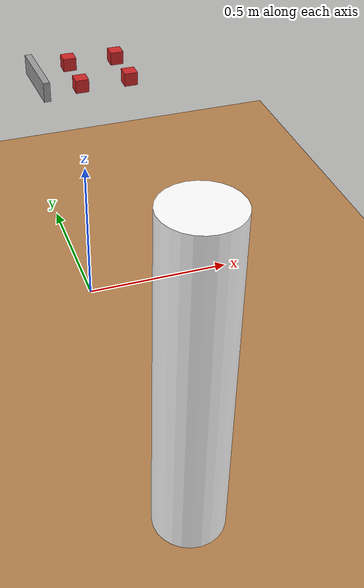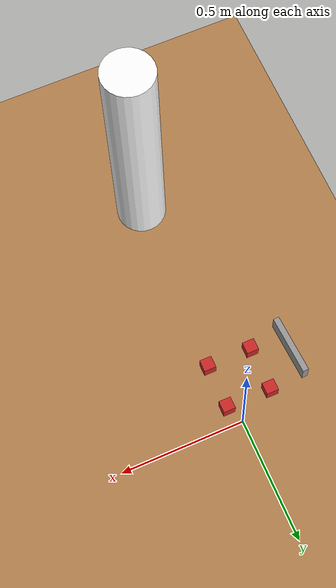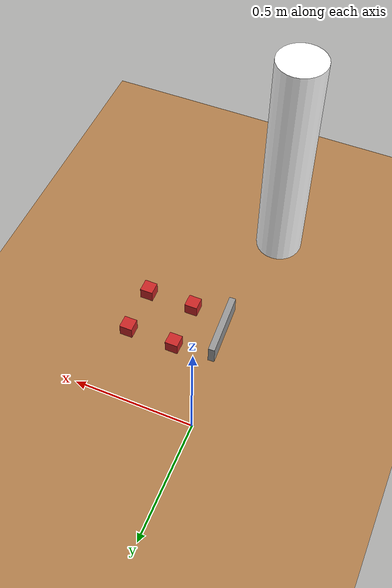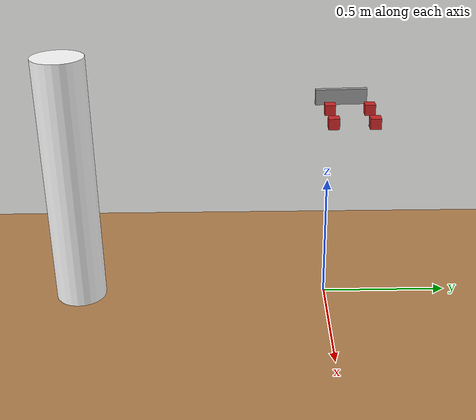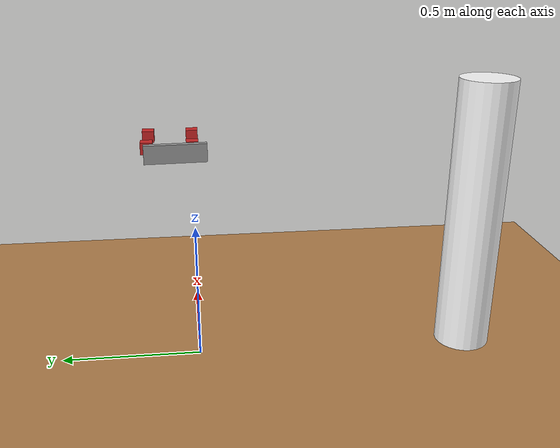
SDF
<sdf version="1.6">
 <world name="default">
  <gravity>0 0 -9.8</gravity>
  <magnetic_field>6e-06 2.3e-05 -4.2e-05</magnetic_field>
  <atmosphere type="adiabatic"/>
  <physics name="default_physics" default="0" type="ode">
   <max_contacts>5</max_contacts>
   <ode>
    <solver>
     <type>quick</type>
     <iters>50</iters>
     <precon_iters>0</precon_iters>
     <sor>1.3</sor>
     <use_dynamic_moi_rescaling>0</use_dynamic_moi_rescaling>
    </solver>
    <constraints>
     <cfm>0</cfm>
     <erp>0.2</erp>
     <contact_max_correcting_vel>100</contact_max_correcting_vel>
     <contact_surface_layer>0.001</contact_surface_layer>
    </constraints>
   </ode>
   <max_step_size>0.001</max_step_size>
   <real_time_factor>1</real_time_factor>
   <real_time_update_rate>1000</real_time_update_rate>
  </physics>
  <scene><ambient>0.4 0.4 0.4 1</ambient><background>0.7 0.7 1 1</background><shadows>1</shadows></scene>
  <spherical_coordinates>
   <surface_model>EARTH_WGS84</surface_model>
   <latitude_deg>0</latitude_deg>
   <longitude_deg>0</longitude_deg>
   <elevation>0</elevation>
   <heading_deg>0</heading_deg>
  </spherical_coordinates>
  <model name="cricket_ball">
   <link name="link">
    <pose>0 0 0.0375 0 -0 0</pose>
    <inertial>
     <mass>0.1467</mass>
     <inertia>
      <ixx>8.25187e-05</ixx>
      <ixy>0</ixy>
      <ixz>0</ixz>
      <iyy>8.25187e-05</iyy>
      <iyz>0</iyz>
      <izz>8.25187e-05</izz>
     </inertia>
    </inertial>
    <collision name="collision">
     <geometry><box><size>0.04 0.04 0.04</size></box></geometry>
     <surface>
      <contact>
       <poissons_ratio>0.347</poissons_ratio>
       <elastic_modulus>8.8e+09</elastic_modulus>
       <ode><kp>100000</kp><kd>100</kd><max_vel>100</max_vel><min_depth>0.001</min_depth></ode>
      </contact>
      <friction>
       <torsional>
        <coefficient>1</coefficient>
        <use_patch_radius>0</use_patch_radius>
        <surface_radius>0.01</surface_radius>
       </torsional>
      </friction>
     </surface>
    </collision>
    <visual name="visual">
     <geometry><box><size>0.04 0.04 0.04</size></box></geometry>
     <material>
      <script><uri>file://media/materials/scripts/gazebo.material</uri><name>Gazebo/Red</name></script>
     </material>
    </visual>
    <velocity_decay><linear>0</linear><angular>0.005</angular></velocity_decay>
   </link>
   <pose>0.15 0 0.756496 0 -0 0.000313</pose>
  </model>
  <model name="floor">
   <static>1</static>
   <pose>-0.506771 -0.304629 -0.025 0 -0 0</pose>
   <link name="link">
    <inertial>
     <mass>1</mass>
     <inertia>
      <ixx>0.166667</ixx>
      <ixy>0</ixy>
      <ixz>0</ixz>
      <iyy>0.166667</iyy>
      <iyz>0</iyz>
      <izz>0.166667</izz>
     </inertia>
    </inertial>
    <collision name="collision"><geometry><box><size>4 4 0.05</size></box></geometry></collision>
    <visual name="visual">
     <geometry><box><size>4 4 0.05</size></box></geometry>
     <material>
      <script><uri>file://media/materials/scripts/gazebo.material</uri><name>Gazebo/Wood</name></script>
      <ambient>1 1 1 1</ambient>
     </material>
    </visual>
   </link>
  </model>
  <model name="robot_pilar">
   <static>1</static>
   <pose>0 -1 0.5 0 -0 0</pose>
   <link name="link">
    <inertial>
     <mass>1</mass>
     <inertia><ixx>0.145833</ixx><ixy>0</ixy><ixz>0</ixz><iyy>0.145833</iyy><iyz>0</iyz><izz>0.125</izz></inertia>
    </inertial>
    <collision name="collision">
     <geometry><cylinder><radius>0.1</radius><length>1</length></cylinder></geometry>
    </collision>
    <visual name="visual">
     <geometry><cylinder><radius>0.1</radius><length>1</length></cylinder></geometry>
     <material>
      <script><uri>file://media/materials/scripts/gazebo.material</uri><name>Gazebo/Metal</name></script>
      <ambient>1 1 1 1</ambient>
     </material>
    </visual>
   </link>
  </model>
  <light name="user_directional_light_0" type="directional">
   <pose>-6.9643 -3.27381 1 0 -0 0</pose>
   <diffuse>0.5 0.5 0.5 1</diffuse>
   <specular>0.1 0.1 0.1 1</specular>
   <direction>0.1 0.1 -0.9</direction>
   <attenuation>
    <range>20</range>
    <constant>0.5</constant>
    <linear>0.01</linear>
    <quadratic>0.001</quadratic>
   </attenuation>
  </light>
  <model name="cricket_ball_clone">
   <link name="link">
    <pose>0 0 0.0375 0 -0 0</pose>
    <inertial>
     <mass>0.1467</mass>
     <inertia>
      <ixx>8.25187e-05</ixx>
      <ixy>0</ixy>
      <ixz>0</ixz>
      <iyy>8.25187e-05</iyy>
      <iyz>0</iyz>
      <izz>8.25187e-05</izz>
     </inertia>
    </inertial>
    <collision name="collision">
     <geometry><box><size>0.04 0.04 0.04</size></box></geometry>
     <surface>
      <contact>
       <poissons_ratio>0.347</poissons_ratio>
       <elastic_modulus>8.8e+09</elastic_modulus>
       <ode><kp>100000</kp><kd>100</kd><max_vel>100</max_vel><min_depth>0.001</min_depth></ode>
      </contact>
      <friction>
       <torsional>
        <coefficient>1</coefficient>
        <use_patch_radius>0</use_patch_radius>
        <surface_radius>0.01</surface_radius>
       </torsional>
      </friction>
     </surface>
    </collision>
    <visual name="visual">
     <geometry><box><size>0.04 0.04 0.04</size></box></geometry>
     <material>
      <script><uri>file://media/materials/scripts/gazebo.material</uri><name>Gazebo/Red</name></script>
     </material>
    </visual>
    <velocity_decay><linear>0</linear><angular>0.005</angular></velocity_decay>
   </link>
   <pose>0 0 0.756496 0 -0 0.000313</pose>
  </model>
  <model name="cricket_ball_clone_0">
   <link name="link">
    <pose>0 0 0.0375 0 -0 0</pose>
    <inertial>
     <mass>0.1467</mass>
     <inertia>
      <ixx>8.25187e-05</ixx>
      <ixy>0</ixy>
      <ixz>0</ixz>
      <iyy>8.25187e-05</iyy>
      <iyz>0</iyz>
      <izz>8.25187e-05</izz>
     </inertia>
    </inertial>
    <collision name="collision">
     <geometry><box><size>0.04 0.04 0.04</size></box></geometry>
     <surface>
      <contact>
       <poissons_ratio>0.347</poissons_ratio>
       <elastic_modulus>8.8e+09</elastic_modulus>
       <ode><kp>100000</kp><kd>100</kd><max_vel>100</max_vel><min_depth>0.001</min_depth></ode>
      </contact>
      <friction>
       <torsional>
        <coefficient>1</coefficient>
        <use_patch_radius>0</use_patch_radius>
        <surface_radius>0.01</surface_radius>
       </torsional>
      </friction>
     </surface>
    </collision>
    <visual name="visual">
     <geometry><box><size>0.04 0.04 0.04</size></box></geometry>
     <material>
      <script><uri>file://media/materials/scripts/gazebo.material</uri><name>Gazebo/Red</name></script>
     </material>
    </visual>
    <velocity_decay><linear>0</linear><angular>0.005</angular></velocity_decay>
   </link>
   <pose>0.15 0.15 0.756496 0 -0 0.000313</pose>
  </model>
  <model name="cricket_ball_clone_1">
   <link name="link">
    <pose>0 0 0.0375 0 -0 0</pose>
    <inertial>
     <mass>0.1467</mass>
     <inertia>
      <ixx>8.25187e-05</ixx>
      <ixy>0</ixy>
      <ixz>0</ixz>
      <iyy>8.25187e-05</iyy>
      <iyz>0</iyz>
      <izz>8.25187e-05</izz>
     </inertia>
    </inertial>
    <collision name="collision">
     <geometry><box><size>0.04 0.04 0.04</size></box></geometry>
     <surface>
      <contact>
       <poissons_ratio>0.347</poissons_ratio>
       <elastic_modulus>8.8e+09</elastic_modulus>
       <ode><kp>100000</kp><kd>100</kd><max_vel>100</max_vel><min_depth>0.001</min_depth></ode>
      </contact>
      <friction>
       <torsional>
        <coefficient>1</coefficient>
        <use_patch_radius>0</use_patch_radius>
        <surface_radius>0.01</surface_radius>
       </torsional>
      </friction>
     </surface>
    </collision>
    <visual name="visual">
     <geometry><box><size>0.04 0.04 0.04</size></box></geometry>
     <material>
      <script><uri>file://media/materials/scripts/gazebo.material</uri><name>Gazebo/Red</name></script>
     </material>
    </visual>
    <velocity_decay><linear>0</linear><angular>0.005</angular></velocity_decay>
   </link>
   <pose>0 0.15 0.756496 0 -0 0.000313</pose>
  </model>
  <model name="zhangai">
   <link name="link">
    <pose>-1.04748 0.199375 0.374952 0 -0 0</pose>
    <inertial>
     <mass>1</mass>
     <inertia>
      <ixx>0.166667</ixx>
      <ixy>0</ixy>
      <ixz>0</ixz>
      <iyy>0.166667</iyy>
      <iyz>0</iyz>
      <izz>0.166667</izz>
     </inertia>
    </inertial>
    <visual name="visual">
     <geometry><box><size>0.2 0.02 0.06</size></box></geometry>
     <material>
      <script><name>Gazebo/Grey</name><uri>file://media/materials/scripts/gazebo.material</uri></script>
      <ambient>0.3 0.3 0.3 1</ambient>
      <diffuse>0.7 0.7 0.7 1</diffuse>
      <specular>0.01 0.01 0.01 1</specular>
      <emissive>0 0 0 1</emissive>
      <shader type="vertex"><normal_map>__default__</normal_map></shader>
     </material>
    </visual>
    <collision name="collision">
     <geometry><box><size>0.2 0.01 0.06</size></box></geometry>
     <surface>
      <friction>
       <ode><mu>1</mu><mu2>1</mu2><fdir1>0 0 0</fdir1><slip1>0</slip1><slip2>0</slip2></ode>
       <torsional>
        <coefficient>1</coefficient>
        <patch_radius>0</patch_radius>
        <surface_radius>0</surface_radius>
        <use_patch_radius>1</use_patch_radius>
        <ode><slip>0</slip></ode>
       </torsional>
      </friction>
      <bounce><restitution_coefficient>0</restitution_coefficient><threshold>1e+06</threshold></bounce>
      <contact>
       <collide_without_contact>0</collide_without_contact>
       <collide_without_contact_bitmask>1</collide_without_contact_bitmask>
       <collide_bitmask>1</collide_bitmask>
       <ode>
        <soft_cfm>0</soft_cfm>
        <soft_erp>0.2</soft_erp>
        <kp>1e+13</kp>
        <kd>1</kd>
        <max_vel>0.01</max_vel>
        <min_depth>0</min_depth>
       </ode>
       <bullet>
        <split_impulse>1</split_impulse>
        <split_impulse_penetration_threshold>-0.01</split_impulse_penetration_threshold>
        <soft_cfm>0</soft_cfm>
        <soft_erp>0.2</soft_erp>
        <kp>1e+13</kp>
        <kd>1</kd>
       </bullet>
      </contact>
     </surface>
    </collision>
   </link>
   <static>0</static>
   <pose>-0.260337 -1.00288 0.430157 -0.000532 -0 -1.51731</pose>
  </model>
 </world>
</sdf>
